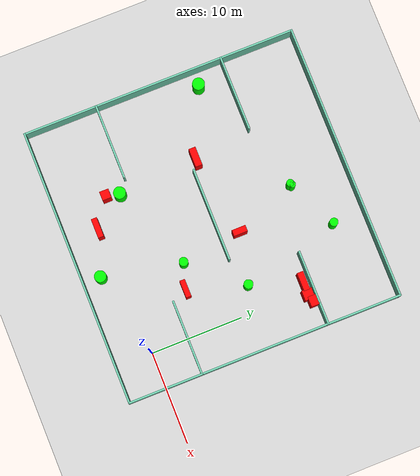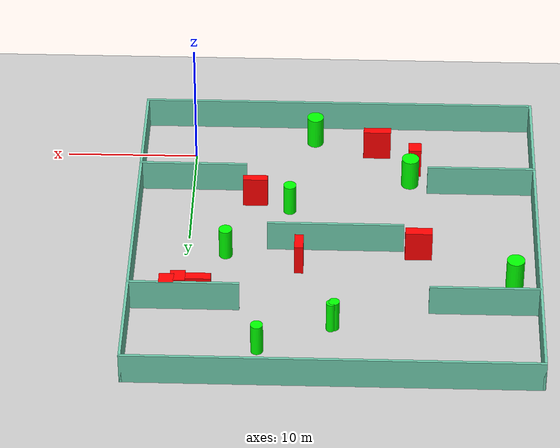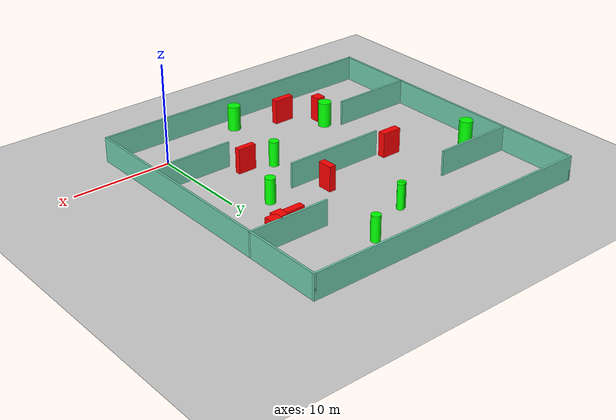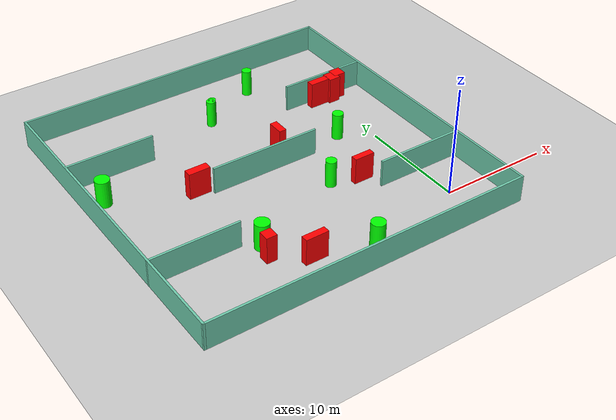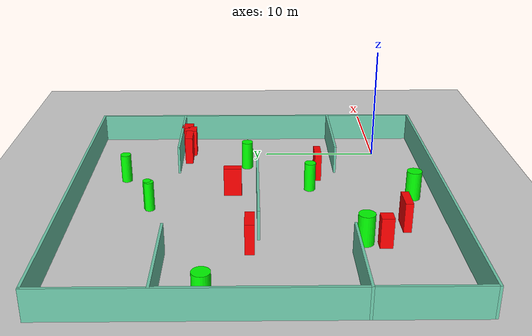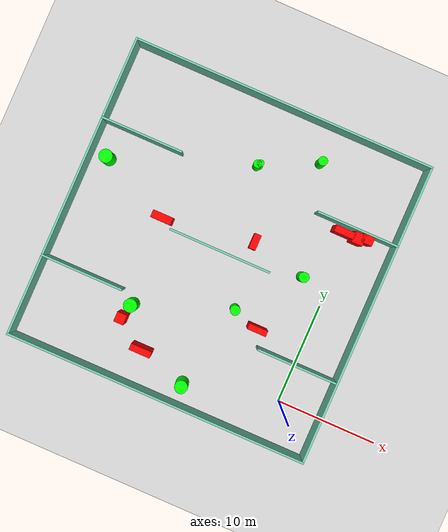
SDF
<sdf version="1.7">
 <world name="default">
  <light name="sun" type="directional">
   <pose>0 0 10 0 -0 0</pose>
   <diffuse>0.8 0.8 0.8 1</diffuse>
   <specular>0.2 0.2 0.2 1</specular>
   <attenuation>
    <range>1000</range>
    <constant>0.9</constant>
    <linear>0.01</linear>
    <quadratic>0.001</quadratic>
   </attenuation>
   <direction>-0.5 0.1 -0.9</direction>
   <spot><inner_angle>0</inner_angle><outer_angle>0</outer_angle><falloff>0</falloff></spot>
  </light>
  <model name="ground_plane">
   <static>1</static>
   <link name="link">
    <collision name="collision">
     <geometry><plane><normal>0 0 1</normal><size>100 100</size></plane></geometry>
     <surface>
      <contact><collide_bitmask>65535</collide_bitmask></contact>
      <friction><ode><mu>100</mu><mu2>50</mu2></ode></friction>
     </surface>
    </collision>
    <visual name="visual">
     <cast_shadows>0</cast_shadows>
     <geometry><plane><normal>0 0 1</normal><size>100 100</size></plane></geometry>
     <material>
      <script><uri>file://media/materials/scripts/gazebo.material</uri><name>Gazebo/Grey</name></script>
     </material>
    </visual>
   </link>
  </model>
  <gravity>0 0 -9.8</gravity>
  <magnetic_field>6e-06 2.3e-05 -4.2e-05</magnetic_field>
  <atmosphere type="adiabatic"/>
  <physics type="ode">
   <max_step_size>0.001</max_step_size>
   <real_time_factor>1</real_time_factor>
   <real_time_update_rate>1000</real_time_update_rate>
  </physics>
  <scene><ambient>0.4 0.4 0.4 1</ambient><background>0.7 0.7 0.7 1</background><shadows>1</shadows></scene>
  <spherical_coordinates>
   <surface_model>EARTH_WGS84</surface_model>
   <latitude_deg>0</latitude_deg>
   <longitude_deg>0</longitude_deg>
   <elevation>0</elevation>
   <heading_deg>0</heading_deg>
  </spherical_coordinates>
  <model name="my_base_walls">
   <link name="Wall_10">
    <collision name="Wall_10_Collision">
     <geometry><box><size>8.2 0.2 2.5</size></box></geometry>
     <pose>0 0 1.25 0 -0 0</pose>
    </collision>
    <visual name="Wall_10_Visual">
     <pose>0 0 1.25 0 -0 0</pose>
     <geometry><box><size>8.2 0.2 2.5</size></box></geometry>
     <material>
      <script><uri>file://media/materials/scripts/gazebo.material</uri><name>Gazebo/Grey</name></script>
      <ambient>0.435294 0.796078 0.67451 1</ambient>
     </material>
     <meta><layer>0</layer></meta>
    </visual>
    <pose>-11 -7 0 0 -0 0</pose>
   </link>
   <link name="Wall_12">
    <collision name="Wall_12_Collision">
     <geometry><box><size>8.2 0.2 2.5</size></box></geometry>
     <pose>0 0 1.25 0 -0 0</pose>
    </collision>
    <visual name="Wall_12_Visual">
     <pose>0 0 1.25 0 -0 0</pose>
     <geometry><box><size>8.2 0.2 2.5</size></box></geometry>
     <material>
      <script><uri>file://media/materials/scripts/gazebo.material</uri><name>Gazebo/Grey</name></script>
      <ambient>0.435294 0.796078 0.67451 1</ambient>
     </material>
     <meta><layer>0</layer></meta>
    </visual>
    <pose>-11 7 0 0 -0 0</pose>
   </link>
   <link name="Wall_14">
    <collision name="Wall_14_Collision">
     <geometry><box><size>8.2 0.2 2.5</size></box></geometry>
     <pose>0 0 1.25 0 -0 0</pose>
    </collision>
    <visual name="Wall_14_Visual">
     <pose>0 0 1.25 0 -0 0</pose>
     <geometry><box><size>8.2 0.2 2.5</size></box></geometry>
     <material>
      <script><uri>file://media/materials/scripts/gazebo.material</uri><name>Gazebo/Grey</name></script>
      <ambient>0.435294 0.796078 0.67451 1</ambient>
     </material>
     <meta><layer>0</layer></meta>
    </visual>
    <pose>11 7 0 0 -0 3.14159</pose>
   </link>
   <link name="Wall_16">
    <collision name="Wall_16_Collision">
     <geometry><box><size>10.2 0.2 2.5</size></box></geometry>
     <pose>0 0 1.25 0 -0 0</pose>
    </collision>
    <visual name="Wall_16_Visual">
     <pose>0 0 1.25 0 -0 0</pose>
     <geometry><box><size>10.2 0.2 2.5</size></box></geometry>
     <material>
      <script><uri>file://media/materials/scripts/gazebo.material</uri><name>Gazebo/Grey</name></script>
      <ambient>0.435294 0.796078 0.67451 1</ambient>
     </material>
     <meta><layer>0</layer></meta>
    </visual>
    <pose>0 0 0 0 -0 3.14159</pose>
   </link>
   <link name="Wall_2">
    <collision name="Wall_2_Collision">
     <geometry><box><size>30.2 0.2 2.5</size></box></geometry>
     <pose>0 0 1.25 0 -0 0</pose>
    </collision>
    <visual name="Wall_2_Visual">
     <pose>0 0 1.25 0 -0 0</pose>
     <geometry><box><size>30.2 0.2 2.5</size></box></geometry>
     <material>
      <script><uri>file://media/materials/scripts/gazebo.material</uri><name>Gazebo/Grey</name></script>
      <ambient>0.435294 0.796078 0.67451 1</ambient>
     </material>
     <meta><layer>0</layer></meta>
    </visual>
    <pose>0 -15 0 0 -0 3.14159</pose>
   </link>
   <link name="Wall_3">
    <collision name="Wall_3_Collision">
     <geometry><box><size>30.2 0.2 2.5</size></box></geometry>
     <pose>0 0 1.25 0 -0 0</pose>
    </collision>
    <visual name="Wall_3_Visual">
     <pose>0 0 1.25 0 -0 0</pose>
     <geometry><box><size>30.2 0.2 2.5</size></box></geometry>
     <material>
      <script><uri>file://media/materials/scripts/gazebo.material</uri><name>Gazebo/Grey</name></script>
      <ambient>0.435294 0.796078 0.67451 1</ambient>
     </material>
     <meta><layer>0</layer></meta>
    </visual>
    <pose>-15 0 0 0 -0 1.5708</pose>
   </link>
   <link name="Wall_4">
    <collision name="Wall_4_Collision">
     <geometry><box><size>30.2 0.2 2.5</size></box></geometry>
     <pose>0 0 1.25 0 -0 0</pose>
    </collision>
    <visual name="Wall_4_Visual">
     <pose>0 0 1.25 0 -0 0</pose>
     <geometry><box><size>30.2 0.2 2.5</size></box></geometry>
     <material>
      <script><uri>file://media/materials/scripts/gazebo.material</uri><name>Gazebo/Grey</name></script>
      <ambient>0.435294 0.796078 0.67451 1</ambient>
     </material>
     <meta><layer>0</layer></meta>
    </visual>
    <pose>0 15 0 0 -0 0</pose>
   </link>
   <link name="Wall_6">
    <collision name="Wall_6_Collision">
     <geometry><box><size>30.2 0.2 2.5</size></box></geometry>
     <pose>0 0 1.25 0 -0 0</pose>
    </collision>
    <visual name="Wall_6_Visual">
     <pose>0 0 1.25 0 -0 0</pose>
     <geometry><box><size>30.2 0.2 2.5</size></box></geometry>
     <material>
      <script><uri>file://media/materials/scripts/gazebo.material</uri><name>Gazebo/Grey</name></script>
      <ambient>0.435294 0.796078 0.67451 1</ambient>
     </material>
     <meta><layer>0</layer></meta>
    </visual>
    <pose>15 0 0 0 -0 1.5708</pose>
   </link>
   <link name="Wall_8">
    <collision name="Wall_8_Collision">
     <geometry><box><size>8.2 0.2 2.5</size></box></geometry>
     <pose>0 0 1.25 0 -0 0</pose>
    </collision>
    <visual name="Wall_8_Visual">
     <pose>0 0 1.25 0 -0 0</pose>
     <geometry><box><size>8.2 0.2 2.5</size></box></geometry>
     <material>
      <script><uri>file://media/materials/scripts/gazebo.material</uri><name>Gazebo/Grey</name></script>
      <ambient>0.435294 0.796078 0.67451 1</ambient>
     </material>
     <meta><layer>0</layer></meta>
    </visual>
    <pose>11 -7 0 0 -0 3.14159</pose>
   </link>
   <static>1</static>
   <pose>-11 11 0 0 -0 0</pose>
  </model>
  <model name="cylinder1">
   <static>1</static>
   <link name="link">
    <inertial>
     <mass>1</mass>
     <inertia><ixx>0.5</ixx><ixy>0</ixy><ixz>0</ixz><iyy>0.5</iyy><iyz>0</iyz><izz>1</izz></inertia>
    </inertial>
    <collision name="collision">
     <geometry><cylinder><radius>0.6295990572189127</radius><length>2.5</length></cylinder></geometry>
    </collision>
    <visual name="visual">
     <geometry><cylinder><radius>0.6295990572189127</radius><length>2.5</length></cylinder></geometry>
     <material>
      <ambient>0 1 0 1</ambient>
      <diffuse>0 1 0 1</diffuse>
      <specular>0.1 0.1 0.1 1</specular>
      <emissive>0 0 0 0</emissive>
     </material>
    </visual>
   </link>
   <pose>-9.213772300781276 -2.0604453140432506 1.25 0 0 0</pose>
  </model>
  <model name="cylinder2">
   <static>1</static>
   <link name="link">
    <inertial>
     <mass>1</mass>
     <inertia><ixx>0.5</ixx><ixy>0</ixy><ixz>0</ixz><iyy>0.5</iyy><iyz>0</iyz><izz>1</izz></inertia>
    </inertial>
    <collision name="collision">
     <geometry><cylinder><radius>0.6602019267761967</radius><length>2.5</length></cylinder></geometry>
    </collision>
    <visual name="visual">
     <geometry><cylinder><radius>0.6602019267761967</radius><length>2.5</length></cylinder></geometry>
     <material>
      <ambient>0 1 0 1</ambient>
      <diffuse>0 1 0 1</diffuse>
      <specular>0.1 0.1 0.1 1</specular>
      <emissive>0 0 0 0</emissive>
     </material>
    </visual>
   </link>
   <pose>-16.60211522291245 2.9703310576576483 1.25 0 0 0</pose>
  </model>
  <model name="cylinder3">
   <static>1</static>
   <link name="link">
    <inertial>
     <mass>1</mass>
     <inertia><ixx>0.5</ixx><ixy>0</ixy><ixz>0</ixz><iyy>0.5</iyy><iyz>0</iyz><izz>1</izz></inertia>
    </inertial>
    <collision name="collision">
     <geometry><cylinder><radius>0.4983711958184698</radius><length>2.5</length></cylinder></geometry>
    </collision>
    <visual name="visual">
     <geometry><cylinder><radius>0.4983711958184698</radius><length>2.5</length></cylinder></geometry>
     <material>
      <ambient>0 1 0 1</ambient>
      <diffuse>0 1 0 1</diffuse>
      <specular>0.1 0.1 0.1 1</specular>
      <emissive>0 0 0 0</emissive>
     </material>
    </visual>
   </link>
   <pose>-2.8216546812201457 11.869247785416633 1.25 0 0 0</pose>
  </model>
  <model name="cylinder4">
   <static>1</static>
   <link name="link">
    <inertial>
     <mass>1</mass>
     <inertia><ixx>0.5</ixx><ixy>0</ixy><ixz>0</ixz><iyy>0.5</iyy><iyz>0</iyz><izz>1</izz></inertia>
    </inertial>
    <collision name="collision">
     <geometry><cylinder><radius>0.3512478924214249</radius><length>2.5</length></cylinder></geometry>
    </collision>
    <visual name="visual">
     <geometry><cylinder><radius>0.3512478924214249</radius><length>2.5</length></cylinder></geometry>
     <material>
      <ambient>0 1 0 1</ambient>
      <diffuse>0 1 0 1</diffuse>
      <specular>0.1 0.1 0.1 1</specular>
      <emissive>0 0 0 0</emissive>
     </material>
    </visual>
   </link>
   <pose>-10.807357432499431 19.980968704547056 1.25 0 0 0</pose>
  </model>
  <model name="cylinder5">
   <static>1</static>
   <link name="link">
    <inertial>
     <mass>1</mass>
     <inertia><ixx>0.5</ixx><ixy>0</ixy><ixz>0</ixz><iyy>0.5</iyy><iyz>0</iyz><izz>1</izz></inertia>
    </inertial>
    <collision name="collision">
     <geometry><cylinder><radius>0.4844088659853485</radius><length>2.5</length></cylinder></geometry>
    </collision>
    <visual name="visual">
     <geometry><cylinder><radius>0.4844088659853485</radius><length>2.5</length></cylinder></geometry>
     <material>
      <ambient>0 1 0 1</ambient>
      <diffuse>0 1 0 1</diffuse>
      <specular>0.1 0.1 0.1 1</specular>
      <emissive>0 0 0 0</emissive>
     </material>
    </visual>
   </link>
   <pose>-7.4574466863565725 6.497162262235481 1.25 0 0 0</pose>
  </model>
  <model name="cylinder6">
   <static>1</static>
   <link name="link">
    <inertial>
     <mass>1</mass>
     <inertia><ixx>0.5</ixx><ixy>0</ixy><ixz>0</ixz><iyy>0.5</iyy><iyz>0</iyz><izz>1</izz></inertia>
    </inertial>
    <collision name="collision">
     <geometry><cylinder><radius>0.4513878134859617</radius><length>2.5</length></cylinder></geometry>
    </collision>
    <visual name="visual">
     <geometry><cylinder><radius>0.4513878134859617</radius><length>2.5</length></cylinder></geometry>
     <material>
      <ambient>0 1 0 1</ambient>
      <diffuse>0 1 0 1</diffuse>
      <specular>0.1 0.1 0.1 1</specular>
      <emissive>0 0 0 0</emissive>
     </material>
    </visual>
   </link>
   <pose>-5.547407315272574 22.49731318273607 1.25 0 0 0</pose>
  </model>
  <model name="cylinder7">
   <static>1</static>
   <link name="link">
    <inertial>
     <mass>1</mass>
     <inertia><ixx>0.5</ixx><ixy>0</ixy><ixz>0</ixz><iyy>0.5</iyy><iyz>0</iyz><izz>1</izz></inertia>
    </inertial>
    <collision name="collision">
     <geometry><cylinder><radius>0.4011747629653754</radius><length>2.5</length></cylinder></geometry>
    </collision>
    <visual name="visual">
     <geometry><cylinder><radius>0.4011747629653754</radius><length>2.5</length></cylinder></geometry>
     <material>
      <ambient>0 1 0 1</ambient>
      <diffuse>0 1 0 1</diffuse>
      <specular>0.1 0.1 0.1 1</specular>
      <emissive>0 0 0 0</emissive>
     </material>
    </visual>
   </link>
   <pose>-11.018873694583496 19.82796779641047 1.25 0 0 0</pose>
  </model>
  <model name="cylinder8">
   <static>1</static>
   <link name="link">
    <inertial>
     <mass>1</mass>
     <inertia><ixx>0.5</ixx><ixy>0</ixy><ixz>0</ixz><iyy>0.5</iyy><iyz>0</iyz><izz>1</izz></inertia>
    </inertial>
    <collision name="collision">
     <geometry><cylinder><radius>0.6601245440002321</radius><length>2.5</length></cylinder></geometry>
    </collision>
    <visual name="visual">
     <geometry><cylinder><radius>0.6601245440002321</radius><length>2.5</length></cylinder></geometry>
     <material>
      <ambient>0 1 0 1</ambient>
      <diffuse>0 1 0 1</diffuse>
      <specular>0.1 0.1 0.1 1</specular>
      <emissive>0 0 0 0</emissive>
     </material>
    </visual>
   </link>
   <pose>-24.269831614857072 14.821999888603493 1.25 0 0 0</pose>
  </model>
  <model name="box1">
   <static>1</static>
   <link name="link">
    <inertial>
     <mass>1</mass>
     <inertia><ixx>0.083</ixx><ixy>0</ixy><ixz>0</ixz><iyy>0.083</iyy><iyz>0</iyz><izz>0.083</izz></inertia>
    </inertial>
    <collision name="collision">
     <geometry><box><size>0.9681846199850015 0.9847757312250862 2.5</size></box></geometry>
    </collision>
    <visual name="visual">
     <geometry><box><size>0.9681846199850015 0.9847757312250862 2.5</size></box></geometry>
     <material>
      <ambient>1 0 0 1</ambient>
      <diffuse>1 0 0 1</diffuse>
      <specular>0.1 0.1 0.1 1</specular>
      <emissive>0 0 0 0</emissive>
     </material>
    </visual>
    <sensor name="my_contact" type="contact">
     <contact><collision>box_collision</collision><topic>__default_topic__</topic></contact>
    </sensor>
   </link>
   <pose>-16.959804202753578 1.5270838761623793 1.25 0 0 0</pose>
  </model>
  <model name="box2">
   <static>1</static>
   <link name="link">
    <inertial>
     <mass>1</mass>
     <inertia><ixx>0.083</ixx><ixy>0</ixy><ixz>0</ixz><iyy>0.083</iyy><iyz>0</iyz><izz>0.083</izz></inertia>
    </inertial>
    <collision name="collision">
     <geometry><box><size>1.107985659160423 1.0147652221902268 2.5</size></box></geometry>
    </collision>
    <visual name="visual">
     <geometry><box><size>1.107985659160423 1.0147652221902268 2.5</size></box></geometry>
     <material>
      <ambient>1 0 0 1</ambient>
      <diffuse>1 0 0 1</diffuse>
      <specular>0.1 0.1 0.1 1</specular>
      <emissive>0 0 0 0</emissive>
     </material>
    </visual>
    <sensor name="my_contact" type="contact">
     <contact><collision>box_collision</collision><topic>__default_topic__</topic></contact>
    </sensor>
   </link>
   <pose>1.217319695201578 17.54162892339711 1.25 0 0 0</pose>
  </model>
  <model name="box3">
   <static>1</static>
   <link name="link">
    <inertial>
     <mass>1</mass>
     <inertia><ixx>0.083</ixx><ixy>0</ixy><ixz>0</ixz><iyy>0.083</iyy><iyz>0</iyz><izz>0.083</izz></inertia>
    </inertial>
    <collision name="collision">
     <geometry><box><size>1.973450059925975 0.6762158606379227 2.5</size></box></geometry>
    </collision>
    <visual name="visual">
     <geometry><box><size>1.973450059925975 0.6762158606379227 2.5</size></box></geometry>
     <material>
      <ambient>1 0 0 1</ambient>
      <diffuse>1 0 0 1</diffuse>
      <specular>0.1 0.1 0.1 1</specular>
      <emissive>0 0 0 0</emissive>
     </material>
    </visual>
    <sensor name="my_contact" type="contact">
     <contact><collision>box_collision</collision><topic>__default_topic__</topic></contact>
    </sensor>
   </link>
   <pose>-1.021480813613735 17.26872482121135 1.25 0 0 0</pose>
  </model>
  <model name="box4">
   <static>1</static>
   <link name="link">
    <inertial>
     <mass>1</mass>
     <inertia><ixx>0.083</ixx><ixy>0</ixy><ixz>0</ixz><iyy>0.083</iyy><iyz>0</iyz><izz>0.083</izz></inertia>
    </inertial>
    <collision name="collision">
     <geometry><box><size>2.0948369505336975 0.6275018818469529 2.5</size></box></geometry>
    </collision>
    <visual name="visual">
     <geometry><box><size>2.0948369505336975 0.6275018818469529 2.5</size></box></geometry>
     <material>
      <ambient>1 0 0 1</ambient>
      <diffuse>1 0 0 1</diffuse>
      <specular>0.1 0.1 0.1 1</specular>
      <emissive>0 0 0 0</emissive>
     </material>
    </visual>
    <sensor name="my_contact" type="contact">
     <contact><collision>box_collision</collision><topic>__default_topic__</topic></contact>
    </sensor>
   </link>
   <pose>-14.043045840687675 -0.4935775076770592 1.25 0 0 0</pose>
  </model>
  <model name="box5">
   <static>1</static>
   <link name="link">
    <inertial>
     <mass>1</mass>
     <inertia><ixx>0.083</ixx><ixy>0</ixy><ixz>0</ixz><iyy>0.083</iyy><iyz>0</iyz><izz>0.083</izz></inertia>
    </inertial>
    <collision name="collision">
     <geometry><box><size>2.013097156103397 0.7461227042664362 2.5</size></box></geometry>
    </collision>
    <visual name="visual">
     <geometry><box><size>2.013097156103397 0.7461227042664362 2.5</size></box></geometry>
     <material>
      <ambient>1 0 0 1</ambient>
      <diffuse>1 0 0 1</diffuse>
      <specular>0.1 0.1 0.1 1</specular>
      <emissive>0 0 0 0</emissive>
     </material>
    </visual>
    <sensor name="my_contact" type="contact">
     <contact><collision>box_collision</collision><topic>__default_topic__</topic></contact>
    </sensor>
   </link>
   <pose>-17.194364573940813 11.681217943751571 1.25 0 0 0</pose>
  </model>
  <model name="box6">
   <static>1</static>
   <link name="link">
    <inertial>
     <mass>1</mass>
     <inertia><ixx>0.083</ixx><ixy>0</ixy><ixz>0</ixz><iyy>0.083</iyy><iyz>0</iyz><izz>0.083</izz></inertia>
    </inertial>
    <collision name="collision">
     <geometry><box><size>1.1029463129222181 1.1069506113548657 2.5</size></box></geometry>
    </collision>
    <visual name="visual">
     <geometry><box><size>1.1029463129222181 1.1069506113548657 2.5</size></box></geometry>
     <material>
      <ambient>1 0 0 1</ambient>
      <diffuse>1 0 0 1</diffuse>
      <specular>0.1 0.1 0.1 1</specular>
      <emissive>0 0 0 0</emissive>
     </material>
    </visual>
    <sensor name="my_contact" type="contact">
     <contact><collision>box_collision</collision><topic>__default_topic__</topic></contact>
    </sensor>
   </link>
   <pose>0.4092868292530767 17.23215864479103 1.25 0 0 0</pose>
  </model>
  <model name="box7">
   <static>1</static>
   <link name="link">
    <inertial>
     <mass>1</mass>
     <inertia><ixx>0.083</ixx><ixy>0</ixy><ixz>0</ixz><iyy>0.083</iyy><iyz>0</iyz><izz>0.083</izz></inertia>
    </inertial>
    <collision name="collision">
     <geometry><box><size>0.6681954293302187 1.5037241146507463 2.5</size></box></geometry>
    </collision>
    <visual name="visual">
     <geometry><box><size>0.6681954293302187 1.5037241146507463 2.5</size></box></geometry>
     <material>
      <ambient>1 0 0 1</ambient>
      <diffuse>1 0 0 1</diffuse>
      <specular>0.1 0.1 0.1 1</specular>
      <emissive>0 0 0 0</emissive>
     </material>
    </visual>
    <sensor name="my_contact" type="contact">
     <contact><collision>box_collision</collision><topic>__default_topic__</topic></contact>
    </sensor>
   </link>
   <pose>-8.317546076122891 13.088081417587745 1.25 0 0 0</pose>
  </model>
  <model name="box8">
   <static>1</static>
   <link name="link">
    <inertial>
     <mass>1</mass>
     <inertia><ixx>0.083</ixx><ixy>0</ixy><ixz>0</ixz><iyy>0.083</iyy><iyz>0</iyz><izz>0.083</izz></inertia>
    </inertial>
    <collision name="collision">
     <geometry><box><size>1.8766986848252507 0.5839787513507357 2.5</size></box></geometry>
    </collision>
    <visual name="visual">
     <geometry><box><size>1.8766986848252507 0.5839787513507357 2.5</size></box></geometry>
     <material>
      <ambient>1 0 0 1</ambient>
      <diffuse>1 0 0 1</diffuse>
      <specular>0.1 0.1 0.1 1</specular>
      <emissive>0 0 0 0</emissive>
     </material>
    </visual>
    <sensor name="my_contact" type="contact">
     <contact><collision>box_collision</collision><topic>__default_topic__</topic></contact>
    </sensor>
   </link>
   <pose>-4.813015232525572 5.658622327566361 1.25 0 0 0</pose>
  </model>
 </world>
</sdf>
